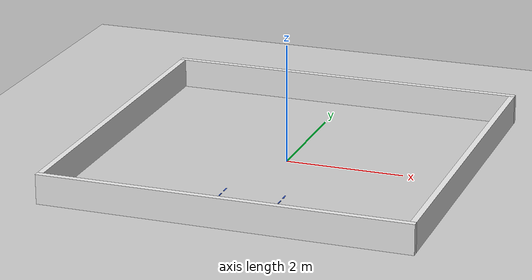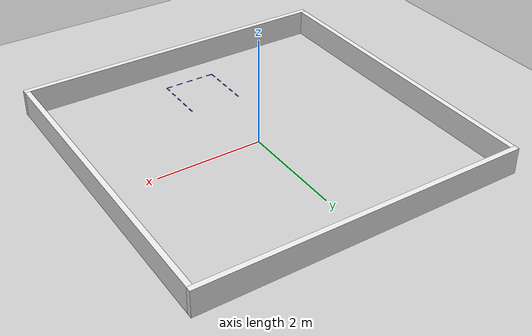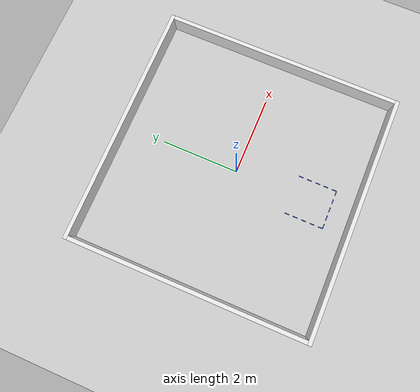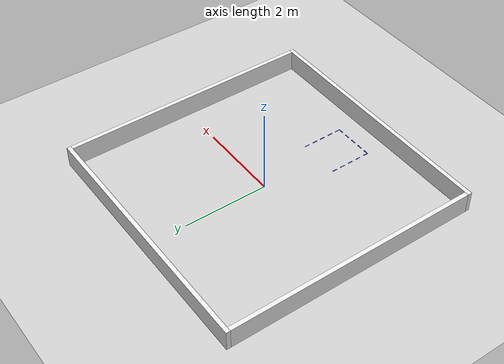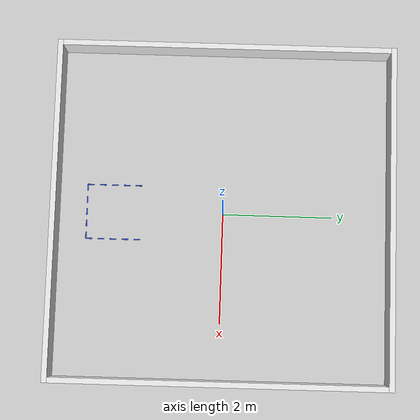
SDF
<?xml version="1.0" ?>
<sdf version="1.6">
  <world name="parking_world">

    <!-- ========== 基础物理设置 ========== -->
    <physics type="ode">
      <real_time_update_rate>9000</real_time_update_rate>  <!-- 进一步提高上限以争取更高RTF -->
      <max_step_size>0.001</max_step_size>                 <!-- 每步0.001s，仿真精度 -->
      <real_time_factor>1</real_time_factor>               <!-- 1=实时，<1=慢动作，>1=加速 -->
      <ode>
        <solver>
          <type>quick</type>
          <iters>30</iters>
        </solver>
      </ode>
      <publish_contacts>true</publish_contacts>
    </physics>

    <!-- ========== 光照 ========== -->
    <light name="sun" type="directional">
      <cast_shadows>true</cast_shadows>
      <pose>0 0 10 0 0 0</pose>
      <diffuse>0.8 0.8 0.8 1</diffuse>
      <specular>0.2 0.2 0.2 1</specular>
      <attenuation>
        <range>1000</range>
        <constant>0.9</constant>
        <linear>0.01</linear>
        <quadratic>0.001</quadratic>
      </attenuation>
      <direction>-0.5 0.1 -0.9</direction>
    </light>

    <!-- ========== 地面 ========== -->
    <model name="ground_plane">
      <static>true</static>
      <link name="link">
        <collision name="collision">
          <geometry>
            <plane>
              <normal>0 0 1</normal>
              <size>20 20</size>
            </plane>
          </geometry>
          <surface>
            <friction>
              <ode>
                <mu>1.0</mu>
                <mu2>1.0</mu2>
              </ode>
            </friction>
          </surface>
        </collision>
        <visual name="visual">
          <cast_shadows>false</cast_shadows>
          <geometry>
            <plane>
              <normal>0 0 1</normal>
              <size>20 20</size>
            </plane>
          </geometry>
          <material>
            <script>
              <uri>file://media/materials/scripts/gazebo.material</uri>
              <name>Gazebo/Grey</name>
            </script>
          </material>
        </visual>
      </link>
    </model>

    <!--        停车场外围墙 6x6，墙高0.5m           -->
    <!--  场地范围：x[-3,3]，y[-3,3]，原点为中心      -->
    <!--  墙厚0.1m，墙中心线在场地边沿外侧            -->

    <!-- 北墙：y=3 -->
    <model name="wall_north">
      <static>true</static>
      <pose>0 3.05 0.25 0 0 0</pose>
      <link name="link">
        <collision name="col">
          <geometry><box><size>6.2 0.1 0.5</size></box></geometry>
        </collision>
        <visual name="vis">
          <geometry><box><size>6.2 0.1 0.5</size></box></geometry>
          <material><script><name>Gazebo/White</name></script></material>
        </visual>
      </link>
    </model>

    <!-- 东墙：x=3 -->
    <model name="wall_east">
      <static>true</static>
      <pose>3.05 0 0.25 0 0 0</pose>
      <link name="link">
        <collision name="col">
          <geometry><box><size>0.1 6 0.5</size></box></geometry>
        </collision>
        <visual name="vis">
          <geometry><box><size>0.1 6 0.5</size></box></geometry>
          <material><script><name>Gazebo/White</name></script></material>
        </visual>
      </link>
    </model>

    <!-- 西墙：x=-3 -->
    <model name="wall_west">
      <static>true</static>
      <pose>-3.05 0 0.25 0 0 0</pose>
      <link name="link">
        <collision name="col">
          <geometry><box><size>0.1 6 0.5</size></box></geometry>
        </collision>
        <visual name="vis">
          <geometry><box><size>0.1 6 0.5</size></box></geometry>
          <material><script><name>Gazebo/White</name></script></material>
        </visual>
      </link>
    </model>

    <!-- 南墙：y=-3  -->
    <model name="wall_south_left">
      <static>true</static>
      <pose>0 -3.05 0.25 0 0 0</pose>
      <link name="link">
        <collision name="col">
          <geometry><box><size>6.2 0.1 0.5</size></box></geometry>
        </collision>
        <visual name="vis">
          <geometry><box><size>6.2 0.1 0.5</size></box></geometry>
          <material><script><name>Gazebo/White</name></script></material>
        </visual>
      </link>
    </model>

<!--   车库边界（仅视觉，无碰撞）：1x1           -->
<!--   中心点：(0, -2)                          -->
<!--   范围：x[-0.5,0.5]，y[-2.5,-1.5]         -->
<!--   开口朝向 y 正方向，蓝色虚线表示            -->
    <model name="garage_boundary">
      <static>true</static>
      <pose>0 -2 0 0 0 0</pose>  <!-- 模型原点在车库中心 -->
      <link name="link">

        <!-- 后墙：相对y=-0.5（绝对y=-2.5），5段虚线沿x轴 -->
        <!-- 5×0.12m + 4×0.10m间隔 = 1.0m -->
        <visual name="back_d1"><pose>-0.44 -0.5 0.01 0 0 0</pose>
          <geometry><box><size>0.12 0.02 0.005</size></box></geometry>
          <material><script><name>Gazebo/Blue</name></script></material></visual>
        <visual name="back_d2"><pose>-0.22 -0.5 0.01 0 0 0</pose>
          <geometry><box><size>0.12 0.02 0.005</size></box></geometry>
          <material><script><name>Gazebo/Blue</name></script></material></visual>
        <visual name="back_d3"><pose>0.00 -0.5 0.01 0 0 0</pose>
          <geometry><box><size>0.12 0.02 0.005</size></box></geometry>
          <material><script><name>Gazebo/Blue</name></script></material></visual>
        <visual name="back_d4"><pose>0.22 -0.5 0.01 0 0 0</pose>
          <geometry><box><size>0.12 0.02 0.005</size></box></geometry>
          <material><script><name>Gazebo/Blue</name></script></material></visual>
        <visual name="back_d5"><pose>0.44 -0.5 0.01 0 0 0</pose>
          <geometry><box><size>0.12 0.02 0.005</size></box></geometry>
          <material><script><name>Gazebo/Blue</name></script></material></visual>

        <!-- 左墙：相对x=-0.5，5段虚线沿y轴 -->
        <visual name="left_d1"><pose>-0.5 -0.44 0.01 0 0 0</pose>
          <geometry><box><size>0.02 0.12 0.005</size></box></geometry>
          <material><script><name>Gazebo/Blue</name></script></material></visual>
        <visual name="left_d2"><pose>-0.5 -0.22 0.01 0 0 0</pose>
          <geometry><box><size>0.02 0.12 0.005</size></box></geometry>
          <material><script><name>Gazebo/Blue</name></script></material></visual>
        <visual name="left_d3"><pose>-0.5  0.00 0.01 0 0 0</pose>
          <geometry><box><size>0.02 0.12 0.005</size></box></geometry>
          <material><script><name>Gazebo/Blue</name></script></material></visual>
        <visual name="left_d4"><pose>-0.5  0.22 0.01 0 0 0</pose>
          <geometry><box><size>0.02 0.12 0.005</size></box></geometry>
          <material><script><name>Gazebo/Blue</name></script></material></visual>
        <visual name="left_d5"><pose>-0.5  0.44 0.01 0 0 0</pose>
          <geometry><box><size>0.02 0.12 0.005</size></box></geometry>
          <material><script><name>Gazebo/Blue</name></script></material></visual>

        <!-- 右墙：相对x=+0.5，5段虚线沿y轴 -->
        <visual name="right_d1"><pose>0.5 -0.44 0.01 0 0 0</pose>
          <geometry><box><size>0.02 0.12 0.005</size></box></geometry>
          <material><script><name>Gazebo/Blue</name></script></material></visual>
        <visual name="right_d2"><pose>0.5 -0.22 0.01 0 0 0</pose>
          <geometry><box><size>0.02 0.12 0.005</size></box></geometry>
          <material><script><name>Gazebo/Blue</name></script></material></visual>
        <visual name="right_d3"><pose>0.5  0.00 0.01 0 0 0</pose>
          <geometry><box><size>0.02 0.12 0.005</size></box></geometry>
          <material><script><name>Gazebo/Blue</name></script></material></visual>
        <visual name="right_d4"><pose>0.5  0.22 0.01 0 0 0</pose>
          <geometry><box><size>0.02 0.12 0.005</size></box></geometry>
          <material><script><name>Gazebo/Blue</name></script></material></visual>
        <visual name="right_d5"><pose>0.5  0.44 0.01 0 0 0</pose>
          <geometry><box><size>0.02 0.12 0.005</size></box></geometry>
          <material><script><name>Gazebo/Blue</name></script></material></visual>

      </link>
    </model>
  </world>
</sdf>
